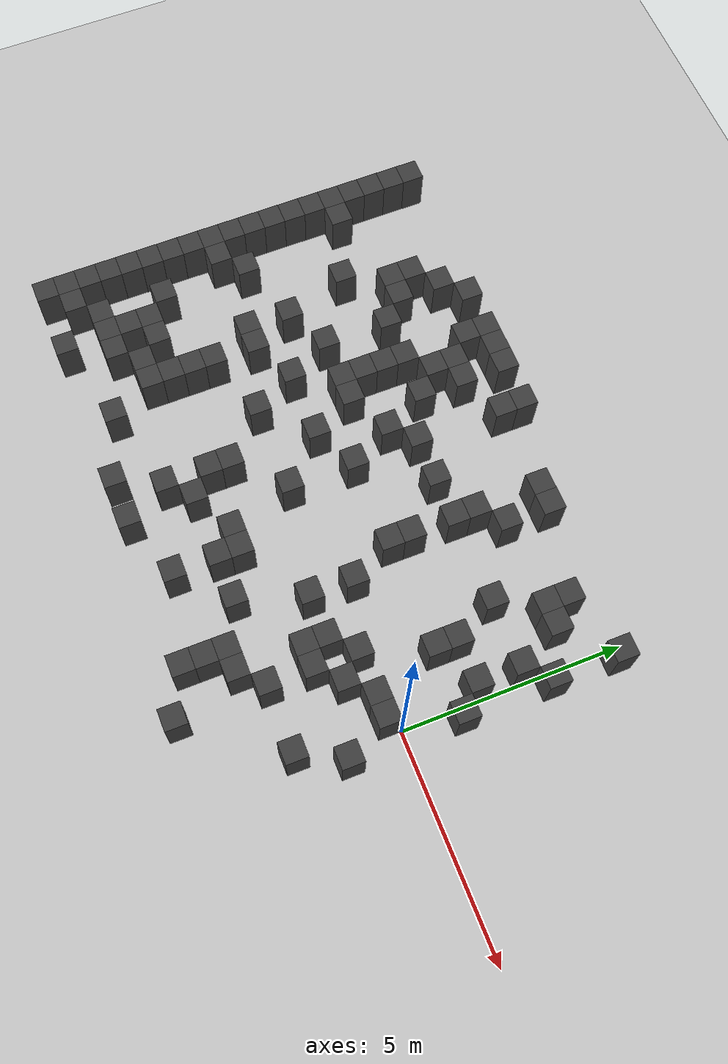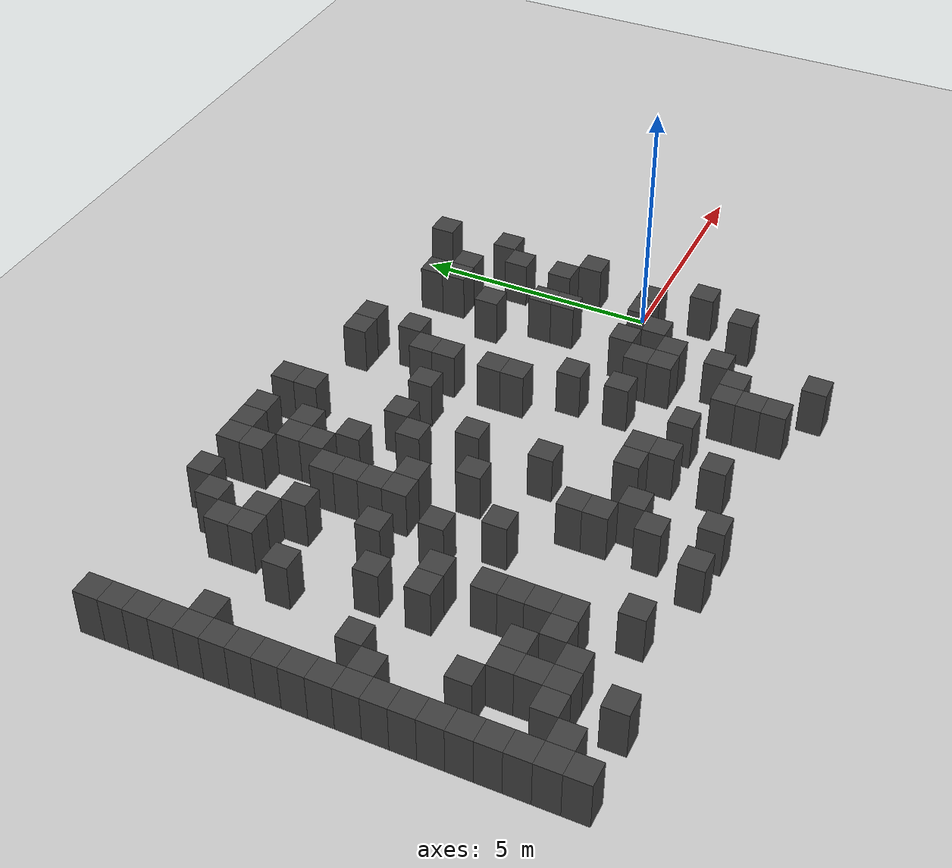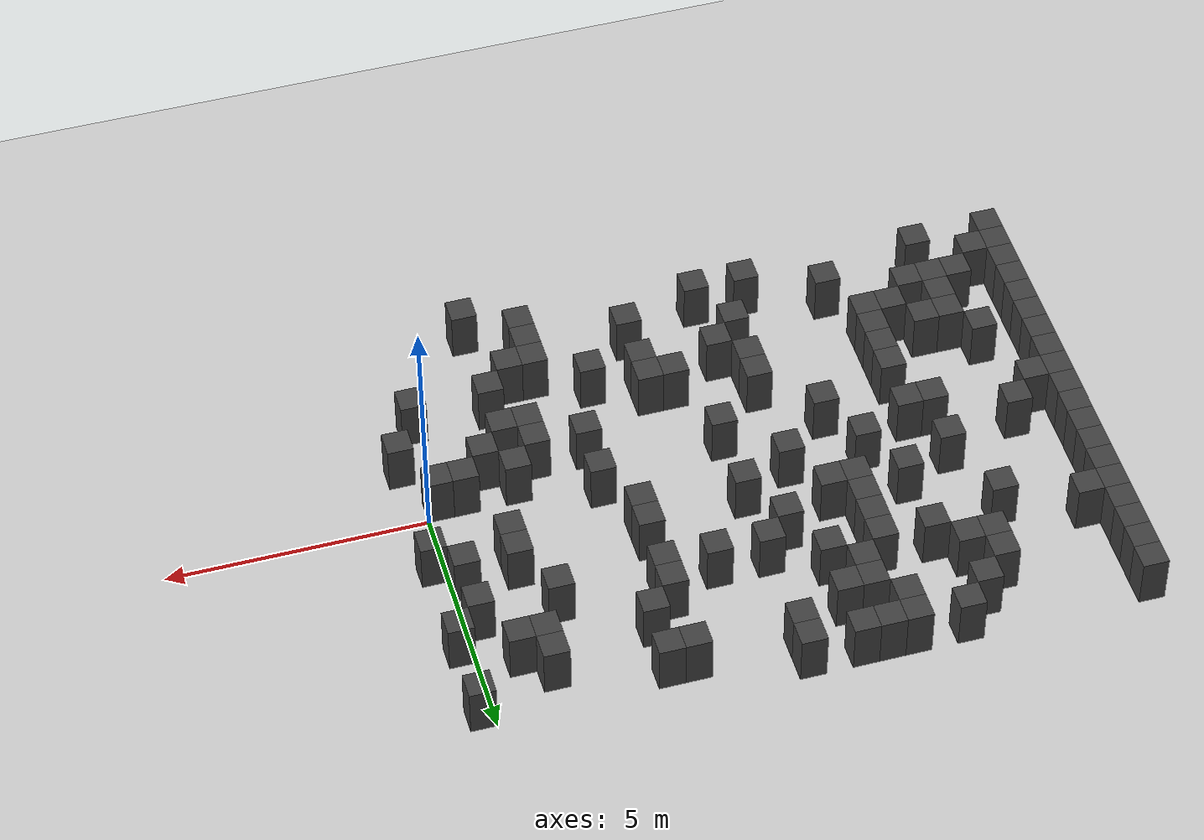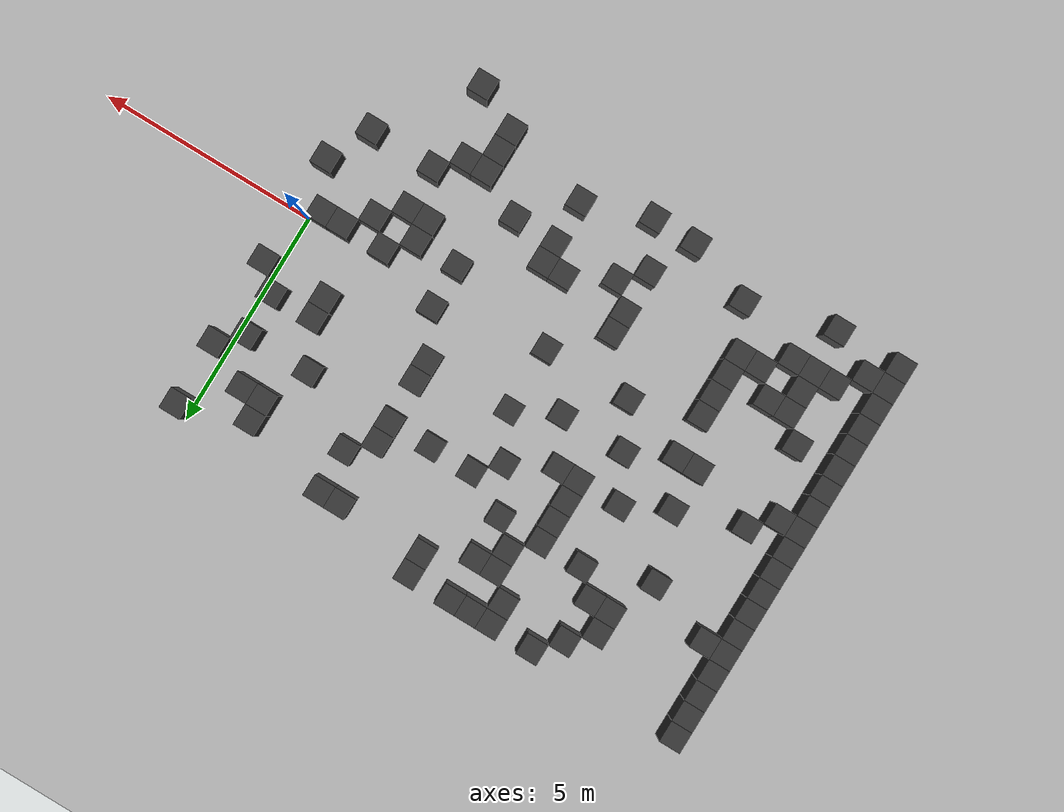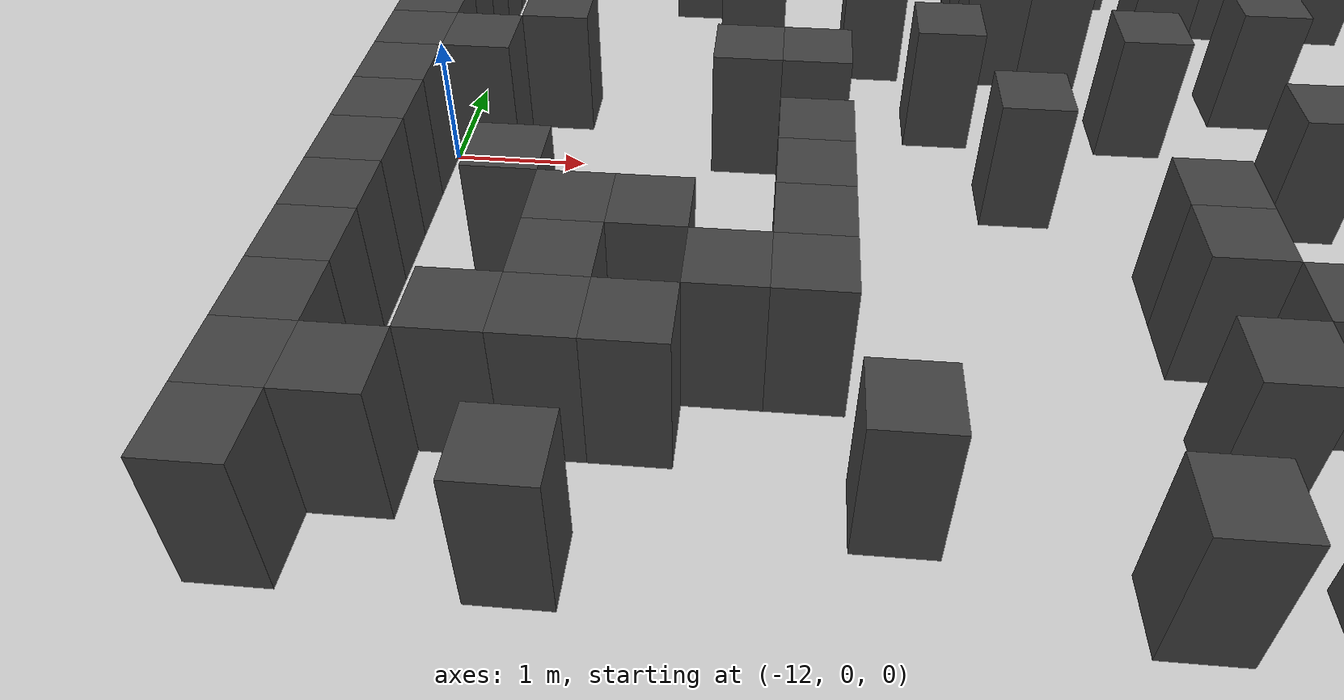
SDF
<sdf version="1.7">
 <world name="map_4581">
  <model name="ground_plane">
   <static>true</static>
   <link name="link">
    <collision name="collision">
     <geometry><plane><normal>0 0 1</normal><size>200 200</size></plane></geometry>
    </collision>
    <visual name="visual">
     <geometry><plane><normal>0 0 1</normal><size>200 200</size></plane></geometry>
     <material><ambient>0.8 0.8 0.8 1</ambient><diffuse>0.8 0.8 0.8 1</diffuse></material>
    </visual>
   </link>
  </model>
  <model name="maze_environment">
   <static>true</static>
   <link name="wall_208">
    <pose>-12.250 5.250 0.500 0 0 0</pose>
    <collision name="col"><geometry><box><size>0.5 0.5 1.0</size></box></geometry></collision>
    <visual name="vis">
     <geometry><box><size>0.5 0.5 1.0</size></box></geometry>
     <material><ambient>0.15 0.15 0.15 1</ambient><diffuse>0.25 0.25 0.25 1</diffuse></material>
    </visual>
   </link>
   <link name="wall_209">
    <pose>-8.750 5.250 0.500 0 0 0</pose>
    <collision name="col"><geometry><box><size>0.5 0.5 1.0</size></box></geometry></collision>
    <visual name="vis">
     <geometry><box><size>0.5 0.5 1.0</size></box></geometry>
     <material><ambient>0.15 0.15 0.15 1</ambient><diffuse>0.25 0.25 0.25 1</diffuse></material>
    </visual>
   </link>
   <link name="wall_210">
    <pose>-7.750 5.250 0.500 0 0 0</pose>
    <collision name="col"><geometry><box><size>0.5 0.5 1.0</size></box></geometry></collision>
    <visual name="vis">
     <geometry><box><size>0.5 0.5 1.0</size></box></geometry>
     <material><ambient>0.15 0.15 0.15 1</ambient><diffuse>0.25 0.25 0.25 1</diffuse></material>
    </visual>
   </link>
   <link name="wall_211">
    <pose>-7.250 5.250 0.500 0 0 0</pose>
    <collision name="col"><geometry><box><size>0.5 0.5 1.0</size></box></geometry></collision>
    <visual name="vis">
     <geometry><box><size>0.5 0.5 1.0</size></box></geometry>
     <material><ambient>0.15 0.15 0.15 1</ambient><diffuse>0.25 0.25 0.25 1</diffuse></material>
    </visual>
   </link>
   <link name="wall_212">
    <pose>-6.750 5.250 0.500 0 0 0</pose>
    <collision name="col"><geometry><box><size>0.5 0.5 1.0</size></box></geometry></collision>
    <visual name="vis">
     <geometry><box><size>0.5 0.5 1.0</size></box></geometry>
     <material><ambient>0.15 0.15 0.15 1</ambient><diffuse>0.25 0.25 0.25 1</diffuse></material>
    </visual>
   </link>
   <link name="wall_213">
    <pose>-5.750 5.250 0.500 0 0 0</pose>
    <collision name="col"><geometry><box><size>0.5 0.5 1.0</size></box></geometry></collision>
    <visual name="vis">
     <geometry><box><size>0.5 0.5 1.0</size></box></geometry>
     <material><ambient>0.15 0.15 0.15 1</ambient><diffuse>0.25 0.25 0.25 1</diffuse></material>
    </visual>
   </link>
   <link name="wall_223">
    <pose>-12.250 4.750 0.500 0 0 0</pose>
    <collision name="col"><geometry><box><size>0.5 0.5 1.0</size></box></geometry></collision>
    <visual name="vis">
     <geometry><box><size>0.5 0.5 1.0</size></box></geometry>
     <material><ambient>0.15 0.15 0.15 1</ambient><diffuse>0.25 0.25 0.25 1</diffuse></material>
    </visual>
   </link>
   <link name="wall_224">
    <pose>-9.250 4.750 0.500 0 0 0</pose>
    <collision name="col"><geometry><box><size>0.5 0.5 1.0</size></box></geometry></collision>
    <visual name="vis">
     <geometry><box><size>0.5 0.5 1.0</size></box></geometry>
     <material><ambient>0.15 0.15 0.15 1</ambient><diffuse>0.25 0.25 0.25 1</diffuse></material>
    </visual>
   </link>
   <link name="wall_225">
    <pose>-7.750 4.750 0.500 0 0 0</pose>
    <collision name="col"><geometry><box><size>0.5 0.5 1.0</size></box></geometry></collision>
    <visual name="vis">
     <geometry><box><size>0.5 0.5 1.0</size></box></geometry>
     <material><ambient>0.15 0.15 0.15 1</ambient><diffuse>0.25 0.25 0.25 1</diffuse></material>
    </visual>
   </link>
   <link name="wall_226">
    <pose>-5.750 4.750 0.500 0 0 0</pose>
    <collision name="col"><geometry><box><size>0.5 0.5 1.0</size></box></geometry></collision>
    <visual name="vis">
     <geometry><box><size>0.5 0.5 1.0</size></box></geometry>
     <material><ambient>0.15 0.15 0.15 1</ambient><diffuse>0.25 0.25 0.25 1</diffuse></material>
    </visual>
   </link>
   <link name="wall_227">
    <pose>-3.750 4.750 0.500 0 0 0</pose>
    <collision name="col"><geometry><box><size>0.5 0.5 1.0</size></box></geometry></collision>
    <visual name="vis">
     <geometry><box><size>0.5 0.5 1.0</size></box></geometry>
     <material><ambient>0.15 0.15 0.15 1</ambient><diffuse>0.25 0.25 0.25 1</diffuse></material>
    </visual>
   </link>
   <link name="wall_228">
    <pose>-3.250 4.750 0.500 0 0 0</pose>
    <collision name="col"><geometry><box><size>0.5 0.5 1.0</size></box></geometry></collision>
    <visual name="vis">
     <geometry><box><size>0.5 0.5 1.0</size></box></geometry>
     <material><ambient>0.15 0.15 0.15 1</ambient><diffuse>0.25 0.25 0.25 1</diffuse></material>
    </visual>
   </link>
   <link name="wall_229">
    <pose>0.250 4.750 0.500 0 0 0</pose>
    <collision name="col"><geometry><box><size>0.5 0.5 1.0</size></box></geometry></collision>
    <visual name="vis">
     <geometry><box><size>0.5 0.5 1.0</size></box></geometry>
     <material><ambient>0.15 0.15 0.15 1</ambient><diffuse>0.25 0.25 0.25 1</diffuse></material>
    </visual>
   </link>
   <link name="wall_235">
    <pose>-12.250 4.250 0.500 0 0 0</pose>
    <collision name="col"><geometry><box><size>0.5 0.5 1.0</size></box></geometry></collision>
    <visual name="vis">
     <geometry><box><size>0.5 0.5 1.0</size></box></geometry>
     <material><ambient>0.15 0.15 0.15 1</ambient><diffuse>0.25 0.25 0.25 1</diffuse></material>
    </visual>
   </link>
   <link name="wall_236">
    <pose>-9.750 4.250 0.500 0 0 0</pose>
    <collision name="col"><geometry><box><size>0.5 0.5 1.0</size></box></geometry></collision>
    <visual name="vis">
     <geometry><box><size>0.5 0.5 1.0</size></box></geometry>
     <material><ambient>0.15 0.15 0.15 1</ambient><diffuse>0.25 0.25 0.25 1</diffuse></material>
    </visual>
   </link>
   <link name="wall_237">
    <pose>-7.250 4.250 0.500 0 0 0</pose>
    <collision name="col"><geometry><box><size>0.5 0.5 1.0</size></box></geometry></collision>
    <visual name="vis">
     <geometry><box><size>0.5 0.5 1.0</size></box></geometry>
     <material><ambient>0.15 0.15 0.15 1</ambient><diffuse>0.25 0.25 0.25 1</diffuse></material>
    </visual>
   </link>
   <link name="wall_238">
    <pose>-6.750 4.250 0.500 0 0 0</pose>
    <collision name="col"><geometry><box><size>0.5 0.5 1.0</size></box></geometry></collision>
    <visual name="vis">
     <geometry><box><size>0.5 0.5 1.0</size></box></geometry>
     <material><ambient>0.15 0.15 0.15 1</ambient><diffuse>0.25 0.25 0.25 1</diffuse></material>
    </visual>
   </link>
   <link name="wall_239">
    <pose>-1.250 4.250 0.500 0 0 0</pose>
    <collision name="col"><geometry><box><size>0.5 0.5 1.0</size></box></geometry></collision>
    <visual name="vis">
     <geometry><box><size>0.5 0.5 1.0</size></box></geometry>
     <material><ambient>0.15 0.15 0.15 1</ambient><diffuse>0.25 0.25 0.25 1</diffuse></material>
    </visual>
   </link>
   <link name="wall_244">
    <pose>-12.250 3.750 0.500 0 0 0</pose>
    <collision name="col"><geometry><box><size>0.5 0.5 1.0</size></box></geometry></collision>
    <visual name="vis">
     <geometry><box><size>0.5 0.5 1.0</size></box></geometry>
     <material><ambient>0.15 0.15 0.15 1</ambient><diffuse>0.25 0.25 0.25 1</diffuse></material>
    </visual>
   </link>
   <link name="wall_245">
    <pose>-9.750 3.750 0.500 0 0 0</pose>
    <collision name="col"><geometry><box><size>0.5 0.5 1.0</size></box></geometry></collision>
    <visual name="vis">
     <geometry><box><size>0.5 0.5 1.0</size></box></geometry>
     <material><ambient>0.15 0.15 0.15 1</ambient><diffuse>0.25 0.25 0.25 1</diffuse></material>
    </visual>
   </link>
   <link name="wall_246">
    <pose>-9.250 3.750 0.500 0 0 0</pose>
    <collision name="col"><geometry><box><size>0.5 0.5 1.0</size></box></geometry></collision>
    <visual name="vis">
     <geometry><box><size>0.5 0.5 1.0</size></box></geometry>
     <material><ambient>0.15 0.15 0.15 1</ambient><diffuse>0.25 0.25 0.25 1</diffuse></material>
    </visual>
   </link>
   <link name="wall_247">
    <pose>-7.250 3.750 0.500 0 0 0</pose>
    <collision name="col"><geometry><box><size>0.5 0.5 1.0</size></box></geometry></collision>
    <visual name="vis">
     <geometry><box><size>0.5 0.5 1.0</size></box></geometry>
     <material><ambient>0.15 0.15 0.15 1</ambient><diffuse>0.25 0.25 0.25 1</diffuse></material>
    </visual>
   </link>
   <link name="wall_248">
    <pose>-3.250 3.750 0.500 0 0 0</pose>
    <collision name="col"><geometry><box><size>0.5 0.5 1.0</size></box></geometry></collision>
    <visual name="vis">
     <geometry><box><size>0.5 0.5 1.0</size></box></geometry>
     <material><ambient>0.15 0.15 0.15 1</ambient><diffuse>0.25 0.25 0.25 1</diffuse></material>
    </visual>
   </link>
   <link name="wall_249">
    <pose>-1.250 3.750 0.500 0 0 0</pose>
    <collision name="col"><geometry><box><size>0.5 0.5 1.0</size></box></geometry></collision>
    <visual name="vis">
     <geometry><box><size>0.5 0.5 1.0</size></box></geometry>
     <material><ambient>0.15 0.15 0.15 1</ambient><diffuse>0.25 0.25 0.25 1</diffuse></material>
    </visual>
   </link>
   <link name="wall_250">
    <pose>-0.750 3.750 0.500 0 0 0</pose>
    <collision name="col"><geometry><box><size>0.5 0.5 1.0</size></box></geometry></collision>
    <visual name="vis">
     <geometry><box><size>0.5 0.5 1.0</size></box></geometry>
     <material><ambient>0.15 0.15 0.15 1</ambient><diffuse>0.25 0.25 0.25 1</diffuse></material>
    </visual>
   </link>
   <link name="wall_254">
    <pose>-12.250 3.250 0.500 0 0 0</pose>
    <collision name="col"><geometry><box><size>0.5 0.5 1.0</size></box></geometry></collision>
    <visual name="vis">
     <geometry><box><size>0.5 0.5 1.0</size></box></geometry>
     <material><ambient>0.15 0.15 0.15 1</ambient><diffuse>0.25 0.25 0.25 1</diffuse></material>
    </visual>
   </link>
   <link name="wall_255">
    <pose>-11.750 3.250 0.500 0 0 0</pose>
    <collision name="col"><geometry><box><size>0.5 0.5 1.0</size></box></geometry></collision>
    <visual name="vis">
     <geometry><box><size>0.5 0.5 1.0</size></box></geometry>
     <material><ambient>0.15 0.15 0.15 1</ambient><diffuse>0.25 0.25 0.25 1</diffuse></material>
    </visual>
   </link>
   <link name="wall_256">
    <pose>-8.750 3.250 0.500 0 0 0</pose>
    <collision name="col"><geometry><box><size>0.5 0.5 1.0</size></box></geometry></collision>
    <visual name="vis">
     <geometry><box><size>0.5 0.5 1.0</size></box></geometry>
     <material><ambient>0.15 0.15 0.15 1</ambient><diffuse>0.25 0.25 0.25 1</diffuse></material>
    </visual>
   </link>
   <link name="wall_257">
    <pose>-7.750 3.250 0.500 0 0 0</pose>
    <collision name="col"><geometry><box><size>0.5 0.5 1.0</size></box></geometry></collision>
    <visual name="vis">
     <geometry><box><size>0.5 0.5 1.0</size></box></geometry>
     <material><ambient>0.15 0.15 0.15 1</ambient><diffuse>0.25 0.25 0.25 1</diffuse></material>
    </visual>
   </link>
   <link name="wall_258">
    <pose>-6.750 3.250 0.500 0 0 0</pose>
    <collision name="col"><geometry><box><size>0.5 0.5 1.0</size></box></geometry></collision>
    <visual name="vis">
     <geometry><box><size>0.5 0.5 1.0</size></box></geometry>
     <material><ambient>0.15 0.15 0.15 1</ambient><diffuse>0.25 0.25 0.25 1</diffuse></material>
    </visual>
   </link>
   <link name="wall_259">
    <pose>-3.750 3.250 0.500 0 0 0</pose>
    <collision name="col"><geometry><box><size>0.5 0.5 1.0</size></box></geometry></collision>
    <visual name="vis">
     <geometry><box><size>0.5 0.5 1.0</size></box></geometry>
     <material><ambient>0.15 0.15 0.15 1</ambient><diffuse>0.25 0.25 0.25 1</diffuse></material>
    </visual>
   </link>
   <link name="wall_260">
    <pose>0.250 3.250 0.500 0 0 0</pose>
    <collision name="col"><geometry><box><size>0.5 0.5 1.0</size></box></geometry></collision>
    <visual name="vis">
     <geometry><box><size>0.5 0.5 1.0</size></box></geometry>
     <material><ambient>0.15 0.15 0.15 1</ambient><diffuse>0.25 0.25 0.25 1</diffuse></material>
    </visual>
   </link>
   <link name="wall_270">
    <pose>-12.250 2.750 0.500 0 0 0</pose>
    <collision name="col"><geometry><box><size>0.5 0.5 1.0</size></box></geometry></collision>
    <visual name="vis">
     <geometry><box><size>0.5 0.5 1.0</size></box></geometry>
     <material><ambient>0.15 0.15 0.15 1</ambient><diffuse>0.25 0.25 0.25 1</diffuse></material>
    </visual>
   </link>
   <link name="wall_271">
    <pose>-10.250 2.750 0.500 0 0 0</pose>
    <collision name="col"><geometry><box><size>0.5 0.5 1.0</size></box></geometry></collision>
    <visual name="vis">
     <geometry><box><size>0.5 0.5 1.0</size></box></geometry>
     <material><ambient>0.15 0.15 0.15 1</ambient><diffuse>0.25 0.25 0.25 1</diffuse></material>
    </visual>
   </link>
   <link name="wall_272">
    <pose>-7.750 2.750 0.500 0 0 0</pose>
    <collision name="col"><geometry><box><size>0.5 0.5 1.0</size></box></geometry></collision>
    <visual name="vis">
     <geometry><box><size>0.5 0.5 1.0</size></box></geometry>
     <material><ambient>0.15 0.15 0.15 1</ambient><diffuse>0.25 0.25 0.25 1</diffuse></material>
    </visual>
   </link>
   <link name="wall_273">
    <pose>-5.750 2.750 0.500 0 0 0</pose>
    <collision name="col"><geometry><box><size>0.5 0.5 1.0</size></box></geometry></collision>
    <visual name="vis">
     <geometry><box><size>0.5 0.5 1.0</size></box></geometry>
     <material><ambient>0.15 0.15 0.15 1</ambient><diffuse>0.25 0.25 0.25 1</diffuse></material>
    </visual>
   </link>
   <link name="wall_274">
    <pose>-4.750 2.750 0.500 0 0 0</pose>
    <collision name="col"><geometry><box><size>0.5 0.5 1.0</size></box></geometry></collision>
    <visual name="vis">
     <geometry><box><size>0.5 0.5 1.0</size></box></geometry>
     <material><ambient>0.15 0.15 0.15 1</ambient><diffuse>0.25 0.25 0.25 1</diffuse></material>
    </visual>
   </link>
   <link name="wall_275">
    <pose>-3.750 2.750 0.500 0 0 0</pose>
    <collision name="col"><geometry><box><size>0.5 0.5 1.0</size></box></geometry></collision>
    <visual name="vis">
     <geometry><box><size>0.5 0.5 1.0</size></box></geometry>
     <material><ambient>0.15 0.15 0.15 1</ambient><diffuse>0.25 0.25 0.25 1</diffuse></material>
    </visual>
   </link>
   <link name="wall_276">
    <pose>-1.750 2.750 0.500 0 0 0</pose>
    <collision name="col"><geometry><box><size>0.5 0.5 1.0</size></box></geometry></collision>
    <visual name="vis">
     <geometry><box><size>0.5 0.5 1.0</size></box></geometry>
     <material><ambient>0.15 0.15 0.15 1</ambient><diffuse>0.25 0.25 0.25 1</diffuse></material>
    </visual>
   </link>
   <link name="wall_277">
    <pose>-0.250 2.750 0.500 0 0 0</pose>
    <collision name="col"><geometry><box><size>0.5 0.5 1.0</size></box></geometry></collision>
    <visual name="vis">
     <geometry><box><size>0.5 0.5 1.0</size></box></geometry>
     <material><ambient>0.15 0.15 0.15 1</ambient><diffuse>0.25 0.25 0.25 1</diffuse></material>
    </visual>
   </link>
   <link name="wall_285">
    <pose>-12.250 2.250 0.500 0 0 0</pose>
    <collision name="col"><geometry><box><size>0.5 0.5 1.0</size></box></geometry></collision>
    <visual name="vis">
     <geometry><box><size>0.5 0.5 1.0</size></box></geometry>
     <material><ambient>0.15 0.15 0.15 1</ambient><diffuse>0.25 0.25 0.25 1</diffuse></material>
    </visual>
   </link>
   <link name="wall_286">
    <pose>-7.750 2.250 0.500 0 0 0</pose>
    <collision name="col"><geometry><box><size>0.5 0.5 1.0</size></box></geometry></collision>
    <visual name="vis">
     <geometry><box><size>0.5 0.5 1.0</size></box></geometry>
     <material><ambient>0.15 0.15 0.15 1</ambient><diffuse>0.25 0.25 0.25 1</diffuse></material>
    </visual>
   </link>
   <link name="wall_287">
    <pose>-6.250 2.250 0.500 0 0 0</pose>
    <collision name="col"><geometry><box><size>0.5 0.5 1.0</size></box></geometry></collision>
    <visual name="vis">
     <geometry><box><size>0.5 0.5 1.0</size></box></geometry>
     <material><ambient>0.15 0.15 0.15 1</ambient><diffuse>0.25 0.25 0.25 1</diffuse></material>
    </visual>
   </link>
   <link name="wall_298">
    <pose>-12.250 1.750 0.500 0 0 0</pose>
    <collision name="col"><geometry><box><size>0.5 0.5 1.0</size></box></geometry></collision>
    <visual name="vis">
     <geometry><box><size>0.5 0.5 1.0</size></box></geometry>
     <material><ambient>0.15 0.15 0.15 1</ambient><diffuse>0.25 0.25 0.25 1</diffuse></material>
    </visual>
   </link>
   <link name="wall_299">
    <pose>-8.750 1.750 0.500 0 0 0</pose>
    <collision name="col"><geometry><box><size>0.5 0.5 1.0</size></box></geometry></collision>
    <visual name="vis">
     <geometry><box><size>0.5 0.5 1.0</size></box></geometry>
     <material><ambient>0.15 0.15 0.15 1</ambient><diffuse>0.25 0.25 0.25 1</diffuse></material>
    </visual>
   </link>
   <link name="wall_300">
    <pose>-7.750 1.750 0.500 0 0 0</pose>
    <collision name="col"><geometry><box><size>0.5 0.5 1.0</size></box></geometry></collision>
    <visual name="vis">
     <geometry><box><size>0.5 0.5 1.0</size></box></geometry>
     <material><ambient>0.15 0.15 0.15 1</ambient><diffuse>0.25 0.25 0.25 1</diffuse></material>
    </visual>
   </link>
   <link name="wall_301">
    <pose>-7.250 1.750 0.500 0 0 0</pose>
    <collision name="col"><geometry><box><size>0.5 0.5 1.0</size></box></geometry></collision>
    <visual name="vis">
     <geometry><box><size>0.5 0.5 1.0</size></box></geometry>
     <material><ambient>0.15 0.15 0.15 1</ambient><diffuse>0.25 0.25 0.25 1</diffuse></material>
    </visual>
   </link>
   <link name="wall_302">
    <pose>-3.750 1.750 0.500 0 0 0</pose>
    <collision name="col"><geometry><box><size>0.5 0.5 1.0</size></box></geometry></collision>
    <visual name="vis">
     <geometry><box><size>0.5 0.5 1.0</size></box></geometry>
     <material><ambient>0.15 0.15 0.15 1</ambient><diffuse>0.25 0.25 0.25 1</diffuse></material>
    </visual>
   </link>
   <link name="wall_303">
    <pose>-1.250 1.750 0.500 0 0 0</pose>
    <collision name="col"><geometry><box><size>0.5 0.5 1.0</size></box></geometry></collision>
    <visual name="vis">
     <geometry><box><size>0.5 0.5 1.0</size></box></geometry>
     <material><ambient>0.15 0.15 0.15 1</ambient><diffuse>0.25 0.25 0.25 1</diffuse></material>
    </visual>
   </link>
   <link name="wall_304">
    <pose>-0.250 1.750 0.500 0 0 0</pose>
    <collision name="col"><geometry><box><size>0.5 0.5 1.0</size></box></geometry></collision>
    <visual name="vis">
     <geometry><box><size>0.5 0.5 1.0</size></box></geometry>
     <material><ambient>0.15 0.15 0.15 1</ambient><diffuse>0.25 0.25 0.25 1</diffuse></material>
    </visual>
   </link>
   <link name="wall_316">
    <pose>-12.250 1.250 0.500 0 0 0</pose>
    <collision name="col"><geometry><box><size>0.5 0.5 1.0</size></box></geometry></collision>
    <visual name="vis">
     <geometry><box><size>0.5 0.5 1.0</size></box></geometry>
     <material><ambient>0.15 0.15 0.15 1</ambient><diffuse>0.25 0.25 0.25 1</diffuse></material>
    </visual>
   </link>
   <link name="wall_317">
    <pose>-9.750 1.250 0.500 0 0 0</pose>
    <collision name="col"><geometry><box><size>0.5 0.5 1.0</size></box></geometry></collision>
    <visual name="vis">
     <geometry><box><size>0.5 0.5 1.0</size></box></geometry>
     <material><ambient>0.15 0.15 0.15 1</ambient><diffuse>0.25 0.25 0.25 1</diffuse></material>
    </visual>
   </link>
   <link name="wall_318">
    <pose>-5.750 1.250 0.500 0 0 0</pose>
    <collision name="col"><geometry><box><size>0.5 0.5 1.0</size></box></geometry></collision>
    <visual name="vis">
     <geometry><box><size>0.5 0.5 1.0</size></box></geometry>
     <material><ambient>0.15 0.15 0.15 1</ambient><diffuse>0.25 0.25 0.25 1</diffuse></material>
    </visual>
   </link>
   <link name="wall_319">
    <pose>-3.750 1.250 0.500 0 0 0</pose>
    <collision name="col"><geometry><box><size>0.5 0.5 1.0</size></box></geometry></collision>
    <visual name="vis">
     <geometry><box><size>0.5 0.5 1.0</size></box></geometry>
     <material><ambient>0.15 0.15 0.15 1</ambient><diffuse>0.25 0.25 0.25 1</diffuse></material>
    </visual>
   </link>
   <link name="wall_320">
    <pose>-1.250 1.250 0.500 0 0 0</pose>
    <collision name="col"><geometry><box><size>0.5 0.5 1.0</size></box></geometry></collision>
    <visual name="vis">
     <geometry><box><size>0.5 0.5 1.0</size></box></geometry>
     <material><ambient>0.15 0.15 0.15 1</ambient><diffuse>0.25 0.25 0.25 1</diffuse></material>
    </visual>
   </link>
   <link name="wall_321">
    <pose>0.250 1.250 0.500 0 0 0</pose>
    <collision name="col"><geometry><box><size>0.5 0.5 1.0</size></box></geometry></collision>
    <visual name="vis">
     <geometry><box><size>0.5 0.5 1.0</size></box></geometry>
     <material><ambient>0.15 0.15 0.15 1</ambient><diffuse>0.25 0.25 0.25 1</diffuse></material>
    </visual>
   </link>
   <link name="wall_328">
    <pose>-12.250 0.750 0.500 0 0 0</pose>
    <collision name="col"><geometry><box><size>0.5 0.5 1.0</size></box></geometry></collision>
    <visual name="vis">
     <geometry><box><size>0.5 0.5 1.0</size></box></geometry>
     <material><ambient>0.15 0.15 0.15 1</ambient><diffuse>0.25 0.25 0.25 1</diffuse></material>
    </visual>
   </link>
   <link name="wall_329">
    <pose>-11.250 0.750 0.500 0 0 0</pose>
    <collision name="col"><geometry><box><size>0.5 0.5 1.0</size></box></geometry></collision>
    <visual name="vis">
     <geometry><box><size>0.5 0.5 1.0</size></box></geometry>
     <material><ambient>0.15 0.15 0.15 1</ambient><diffuse>0.25 0.25 0.25 1</diffuse></material>
    </visual>
   </link>
   <link name="wall_330">
    <pose>-8.250 0.750 0.500 0 0 0</pose>
    <collision name="col"><geometry><box><size>0.5 0.5 1.0</size></box></geometry></collision>
    <visual name="vis">
     <geometry><box><size>0.5 0.5 1.0</size></box></geometry>
     <material><ambient>0.15 0.15 0.15 1</ambient><diffuse>0.25 0.25 0.25 1</diffuse></material>
    </visual>
   </link>
   <link name="wall_331">
    <pose>-6.750 0.750 0.500 0 0 0</pose>
    <collision name="col"><geometry><box><size>0.5 0.5 1.0</size></box></geometry></collision>
    <visual name="vis">
     <geometry><box><size>0.5 0.5 1.0</size></box></geometry>
     <material><ambient>0.15 0.15 0.15 1</ambient><diffuse>0.25 0.25 0.25 1</diffuse></material>
    </visual>
   </link>
   <link name="wall_340">
    <pose>-12.250 0.250 0.500 0 0 0</pose>
    <collision name="col"><geometry><box><size>0.5 0.5 1.0</size></box></geometry></collision>
    <visual name="vis">
     <geometry><box><size>0.5 0.5 1.0</size></box></geometry>
     <material><ambient>0.15 0.15 0.15 1</ambient><diffuse>0.25 0.25 0.25 1</diffuse></material>
    </visual>
   </link>
   <link name="wall_341">
    <pose>-11.750 0.250 0.500 0 0 0</pose>
    <collision name="col"><geometry><box><size>0.5 0.5 1.0</size></box></geometry></collision>
    <visual name="vis">
     <geometry><box><size>0.5 0.5 1.0</size></box></geometry>
     <material><ambient>0.15 0.15 0.15 1</ambient><diffuse>0.25 0.25 0.25 1</diffuse></material>
    </visual>
   </link>
   <link name="wall_342">
    <pose>-9.750 0.250 0.500 0 0 0</pose>
    <collision name="col"><geometry><box><size>0.5 0.5 1.0</size></box></geometry></collision>
    <visual name="vis">
     <geometry><box><size>0.5 0.5 1.0</size></box></geometry>
     <material><ambient>0.15 0.15 0.15 1</ambient><diffuse>0.25 0.25 0.25 1</diffuse></material>
    </visual>
   </link>
   <link name="wall_343">
    <pose>-9.250 0.250 0.500 0 0 0</pose>
    <collision name="col"><geometry><box><size>0.5 0.5 1.0</size></box></geometry></collision>
    <visual name="vis">
     <geometry><box><size>0.5 0.5 1.0</size></box></geometry>
     <material><ambient>0.15 0.15 0.15 1</ambient><diffuse>0.25 0.25 0.25 1</diffuse></material>
    </visual>
   </link>
   <link name="wall_344">
    <pose>-3.250 0.250 0.500 0 0 0</pose>
    <collision name="col"><geometry><box><size>0.5 0.5 1.0</size></box></geometry></collision>
    <visual name="vis">
     <geometry><box><size>0.5 0.5 1.0</size></box></geometry>
     <material><ambient>0.15 0.15 0.15 1</ambient><diffuse>0.25 0.25 0.25 1</diffuse></material>
    </visual>
   </link>
   <link name="wall_351">
    <pose>-12.250 -0.250 0.500 0 0 0</pose>
    <collision name="col"><geometry><box><size>0.5 0.5 1.0</size></box></geometry></collision>
    <visual name="vis">
     <geometry><box><size>0.5 0.5 1.0</size></box></geometry>
     <material><ambient>0.15 0.15 0.15 1</ambient><diffuse>0.25 0.25 0.25 1</diffuse></material>
    </visual>
   </link>
   <link name="wall_352">
    <pose>-7.750 -0.250 0.500 0 0 0</pose>
    <collision name="col"><geometry><box><size>0.5 0.5 1.0</size></box></geometry></collision>
    <visual name="vis">
     <geometry><box><size>0.5 0.5 1.0</size></box></geometry>
     <material><ambient>0.15 0.15 0.15 1</ambient><diffuse>0.25 0.25 0.25 1</diffuse></material>
    </visual>
   </link>
   <link name="wall_353">
    <pose>-5.750 -0.250 0.500 0 0 0</pose>
    <collision name="col"><geometry><box><size>0.5 0.5 1.0</size></box></geometry></collision>
    <visual name="vis">
     <geometry><box><size>0.5 0.5 1.0</size></box></geometry>
     <material><ambient>0.15 0.15 0.15 1</ambient><diffuse>0.25 0.25 0.25 1</diffuse></material>
    </visual>
   </link>
   <link name="wall_354">
    <pose>-1.750 -0.250 0.500 0 0 0</pose>
    <collision name="col"><geometry><box><size>0.5 0.5 1.0</size></box></geometry></collision>
    <visual name="vis">
     <geometry><box><size>0.5 0.5 1.0</size></box></geometry>
     <material><ambient>0.15 0.15 0.15 1</ambient><diffuse>0.25 0.25 0.25 1</diffuse></material>
    </visual>
   </link>
   <link name="wall_355">
    <pose>-0.750 -0.250 0.500 0 0 0</pose>
    <collision name="col"><geometry><box><size>0.5 0.5 1.0</size></box></geometry></collision>
    <visual name="vis">
     <geometry><box><size>0.5 0.5 1.0</size></box></geometry>
     <material><ambient>0.15 0.15 0.15 1</ambient><diffuse>0.25 0.25 0.25 1</diffuse></material>
    </visual>
   </link>
   <link name="wall_356">
    <pose>-0.250 -0.250 0.500 0 0 0</pose>
    <collision name="col"><geometry><box><size>0.5 0.5 1.0</size></box></geometry></collision>
    <visual name="vis">
     <geometry><box><size>0.5 0.5 1.0</size></box></geometry>
     <material><ambient>0.15 0.15 0.15 1</ambient><diffuse>0.25 0.25 0.25 1</diffuse></material>
    </visual>
   </link>
   <link name="wall_361">
    <pose>-12.250 -0.750 0.500 0 0 0</pose>
    <collision name="col"><geometry><box><size>0.5 0.5 1.0</size></box></geometry></collision>
    <visual name="vis">
     <geometry><box><size>0.5 0.5 1.0</size></box></geometry>
     <material><ambient>0.15 0.15 0.15 1</ambient><diffuse>0.25 0.25 0.25 1</diffuse></material>
    </visual>
   </link>
   <link name="wall_362">
    <pose>-9.250 -0.750 0.500 0 0 0</pose>
    <collision name="col"><geometry><box><size>0.5 0.5 1.0</size></box></geometry></collision>
    <visual name="vis">
     <geometry><box><size>0.5 0.5 1.0</size></box></geometry>
     <material><ambient>0.15 0.15 0.15 1</ambient><diffuse>0.25 0.25 0.25 1</diffuse></material>
    </visual>
   </link>
   <link name="wall_363">
    <pose>-3.250 -0.750 0.500 0 0 0</pose>
    <collision name="col"><geometry><box><size>0.5 0.5 1.0</size></box></geometry></collision>
    <visual name="vis">
     <geometry><box><size>0.5 0.5 1.0</size></box></geometry>
     <material><ambient>0.15 0.15 0.15 1</ambient><diffuse>0.25 0.25 0.25 1</diffuse></material>
    </visual>
   </link>
   <link name="wall_364">
    <pose>-2.250 -0.750 0.500 0 0 0</pose>
    <collision name="col"><geometry><box><size>0.5 0.5 1.0</size></box></geometry></collision>
    <visual name="vis">
     <geometry><box><size>0.5 0.5 1.0</size></box></geometry>
     <material><ambient>0.15 0.15 0.15 1</ambient><diffuse>0.25 0.25 0.25 1</diffuse></material>
    </visual>
   </link>
   <link name="wall_365">
    <pose>-1.250 -0.750 0.500 0 0 0</pose>
    <collision name="col"><geometry><box><size>0.5 0.5 1.0</size></box></geometry></collision>
    <visual name="vis">
     <geometry><box><size>0.5 0.5 1.0</size></box></geometry>
     <material><ambient>0.15 0.15 0.15 1</ambient><diffuse>0.25 0.25 0.25 1</diffuse></material>
    </visual>
   </link>
   <link name="wall_370">
    <pose>-12.250 -1.250 0.500 0 0 0</pose>
    <collision name="col"><geometry><box><size>0.5 0.5 1.0</size></box></geometry></collision>
    <visual name="vis">
     <geometry><box><size>0.5 0.5 1.0</size></box></geometry>
     <material><ambient>0.15 0.15 0.15 1</ambient><diffuse>0.25 0.25 0.25 1</diffuse></material>
    </visual>
   </link>
   <link name="wall_371">
    <pose>-11.250 -1.250 0.500 0 0 0</pose>
    <collision name="col"><geometry><box><size>0.5 0.5 1.0</size></box></geometry></collision>
    <visual name="vis">
     <geometry><box><size>0.5 0.5 1.0</size></box></geometry>
     <material><ambient>0.15 0.15 0.15 1</ambient><diffuse>0.25 0.25 0.25 1</diffuse></material>
    </visual>
   </link>
   <link name="wall_372">
    <pose>-9.250 -1.250 0.500 0 0 0</pose>
    <collision name="col"><geometry><box><size>0.5 0.5 1.0</size></box></geometry></collision>
    <visual name="vis">
     <geometry><box><size>0.5 0.5 1.0</size></box></geometry>
     <material><ambient>0.15 0.15 0.15 1</ambient><diffuse>0.25 0.25 0.25 1</diffuse></material>
    </visual>
   </link>
   <link name="wall_373">
    <pose>-6.750 -1.250 0.500 0 0 0</pose>
    <collision name="col"><geometry><box><size>0.5 0.5 1.0</size></box></geometry></collision>
    <visual name="vis">
     <geometry><box><size>0.5 0.5 1.0</size></box></geometry>
     <material><ambient>0.15 0.15 0.15 1</ambient><diffuse>0.25 0.25 0.25 1</diffuse></material>
    </visual>
   </link>
   <link name="wall_374">
    <pose>-2.250 -1.250 0.500 0 0 0</pose>
    <collision name="col"><geometry><box><size>0.5 0.5 1.0</size></box></geometry></collision>
    <visual name="vis">
     <geometry><box><size>0.5 0.5 1.0</size></box></geometry>
     <material><ambient>0.15 0.15 0.15 1</ambient><diffuse>0.25 0.25 0.25 1</diffuse></material>
    </visual>
   </link>
   <link name="wall_375">
    <pose>-1.750 -1.250 0.500 0 0 0</pose>
    <collision name="col"><geometry><box><size>0.5 0.5 1.0</size></box></geometry></collision>
    <visual name="vis">
     <geometry><box><size>0.5 0.5 1.0</size></box></geometry>
     <material><ambient>0.15 0.15 0.15 1</ambient><diffuse>0.25 0.25 0.25 1</diffuse></material>
    </visual>
   </link>
   <link name="wall_376">
    <pose>0.250 -1.250 0.500 0 0 0</pose>
    <collision name="col"><geometry><box><size>0.5 0.5 1.0</size></box></geometry></collision>
    <visual name="vis">
     <geometry><box><size>0.5 0.5 1.0</size></box></geometry>
     <material><ambient>0.15 0.15 0.15 1</ambient><diffuse>0.25 0.25 0.25 1</diffuse></material>
    </visual>
   </link>
   <link name="wall_382">
    <pose>-12.250 -1.750 0.500 0 0 0</pose>
    <collision name="col"><geometry><box><size>0.5 0.5 1.0</size></box></geometry></collision>
    <visual name="vis">
     <geometry><box><size>0.5 0.5 1.0</size></box></geometry>
     <material><ambient>0.15 0.15 0.15 1</ambient><diffuse>0.25 0.25 0.25 1</diffuse></material>
    </visual>
   </link>
   <link name="wall_383">
    <pose>-10.750 -1.750 0.500 0 0 0</pose>
    <collision name="col"><geometry><box><size>0.5 0.5 1.0</size></box></geometry></collision>
    <visual name="vis">
     <geometry><box><size>0.5 0.5 1.0</size></box></geometry>
     <material><ambient>0.15 0.15 0.15 1</ambient><diffuse>0.25 0.25 0.25 1</diffuse></material>
    </visual>
   </link>
   <link name="wall_384">
    <pose>-10.250 -1.750 0.500 0 0 0</pose>
    <collision name="col"><geometry><box><size>0.5 0.5 1.0</size></box></geometry></collision>
    <visual name="vis">
     <geometry><box><size>0.5 0.5 1.0</size></box></geometry>
     <material><ambient>0.15 0.15 0.15 1</ambient><diffuse>0.25 0.25 0.25 1</diffuse></material>
    </visual>
   </link>
   <link name="wall_385">
    <pose>-9.250 -1.750 0.500 0 0 0</pose>
    <collision name="col"><geometry><box><size>0.5 0.5 1.0</size></box></geometry></collision>
    <visual name="vis">
     <geometry><box><size>0.5 0.5 1.0</size></box></geometry>
     <material><ambient>0.15 0.15 0.15 1</ambient><diffuse>0.25 0.25 0.25 1</diffuse></material>
    </visual>
   </link>
   <link name="wall_386">
    <pose>-6.750 -1.750 0.500 0 0 0</pose>
    <collision name="col"><geometry><box><size>0.5 0.5 1.0</size></box></geometry></collision>
    <visual name="vis">
     <geometry><box><size>0.5 0.5 1.0</size></box></geometry>
     <material><ambient>0.15 0.15 0.15 1</ambient><diffuse>0.25 0.25 0.25 1</diffuse></material>
    </visual>
   </link>
   <link name="wall_387">
    <pose>-5.250 -1.750 0.500 0 0 0</pose>
    <collision name="col"><geometry><box><size>0.5 0.5 1.0</size></box></geometry></collision>
    <visual name="vis">
     <geometry><box><size>0.5 0.5 1.0</size></box></geometry>
     <material><ambient>0.15 0.15 0.15 1</ambient><diffuse>0.25 0.25 0.25 1</diffuse></material>
    </visual>
   </link>
   <link name="wall_388">
    <pose>-4.750 -1.750 0.500 0 0 0</pose>
    <collision name="col"><geometry><box><size>0.5 0.5 1.0</size></box></geometry></collision>
    <visual name="vis">
     <geometry><box><size>0.5 0.5 1.0</size></box></geometry>
     <material><ambient>0.15 0.15 0.15 1</ambient><diffuse>0.25 0.25 0.25 1</diffuse></material>
    </visual>
   </link>
   <link name="wall_394">
    <pose>-12.250 -2.250 0.500 0 0 0</pose>
    <collision name="col"><geometry><box><size>0.5 0.5 1.0</size></box></geometry></collision>
    <visual name="vis">
     <geometry><box><size>0.5 0.5 1.0</size></box></geometry>
     <material><ambient>0.15 0.15 0.15 1</ambient><diffuse>0.25 0.25 0.25 1</diffuse></material>
    </visual>
   </link>
   <link name="wall_395">
    <pose>-10.750 -2.250 0.500 0 0 0</pose>
    <collision name="col"><geometry><box><size>0.5 0.5 1.0</size></box></geometry></collision>
    <visual name="vis">
     <geometry><box><size>0.5 0.5 1.0</size></box></geometry>
     <material><ambient>0.15 0.15 0.15 1</ambient><diffuse>0.25 0.25 0.25 1</diffuse></material>
    </visual>
   </link>
   <link name="wall_396">
    <pose>-9.750 -2.250 0.500 0 0 0</pose>
    <collision name="col"><geometry><box><size>0.5 0.5 1.0</size></box></geometry></collision>
    <visual name="vis">
     <geometry><box><size>0.5 0.5 1.0</size></box></geometry>
     <material><ambient>0.15 0.15 0.15 1</ambient><diffuse>0.25 0.25 0.25 1</diffuse></material>
    </visual>
   </link>
   <link name="wall_397">
    <pose>-9.250 -2.250 0.500 0 0 0</pose>
    <collision name="col"><geometry><box><size>0.5 0.5 1.0</size></box></geometry></collision>
    <visual name="vis">
     <geometry><box><size>0.5 0.5 1.0</size></box></geometry>
     <material><ambient>0.15 0.15 0.15 1</ambient><diffuse>0.25 0.25 0.25 1</diffuse></material>
    </visual>
   </link>
   <link name="wall_398">
    <pose>-6.250 -2.250 0.500 0 0 0</pose>
    <collision name="col"><geometry><box><size>0.5 0.5 1.0</size></box></geometry></collision>
    <visual name="vis">
     <geometry><box><size>0.5 0.5 1.0</size></box></geometry>
     <material><ambient>0.15 0.15 0.15 1</ambient><diffuse>0.25 0.25 0.25 1</diffuse></material>
    </visual>
   </link>
   <link name="wall_399">
    <pose>-4.750 -2.250 0.500 0 0 0</pose>
    <collision name="col"><geometry><box><size>0.5 0.5 1.0</size></box></geometry></collision>
    <visual name="vis">
     <geometry><box><size>0.5 0.5 1.0</size></box></geometry>
     <material><ambient>0.15 0.15 0.15 1</ambient><diffuse>0.25 0.25 0.25 1</diffuse></material>
    </visual>
   </link>
   <link name="wall_400">
    <pose>-3.750 -2.250 0.500 0 0 0</pose>
    <collision name="col"><geometry><box><size>0.5 0.5 1.0</size></box></geometry></collision>
    <visual name="vis">
     <geometry><box><size>0.5 0.5 1.0</size></box></geometry>
     <material><ambient>0.15 0.15 0.15 1</ambient><diffuse>0.25 0.25 0.25 1</diffuse></material>
    </visual>
   </link>
   <link name="wall_401">
    <pose>-1.750 -2.250 0.500 0 0 0</pose>
    <collision name="col"><geometry><box><size>0.5 0.5 1.0</size></box></geometry></collision>
    <visual name="vis">
     <geometry><box><size>0.5 0.5 1.0</size></box></geometry>
     <material><ambient>0.15 0.15 0.15 1</ambient><diffuse>0.25 0.25 0.25 1</diffuse></material>
    </visual>
   </link>
   <link name="wall_402">
    <pose>-0.250 -2.250 0.500 0 0 0</pose>
    <collision name="col"><geometry><box><size>0.5 0.5 1.0</size></box></geometry></collision>
    <visual name="vis">
     <geometry><box><size>0.5 0.5 1.0</size></box></geometry>
     <material><ambient>0.15 0.15 0.15 1</ambient><diffuse>0.25 0.25 0.25 1</diffuse></material>
    </visual>
   </link>
   <link name="wall_414">
    <pose>-12.250 -2.750 0.500 0 0 0</pose>
    <collision name="col"><geometry><box><size>0.5 0.5 1.0</size></box></geometry></collision>
    <visual name="vis">
     <geometry><box><size>0.5 0.5 1.0</size></box></geometry>
     <material><ambient>0.15 0.15 0.15 1</ambient><diffuse>0.25 0.25 0.25 1</diffuse></material>
    </visual>
   </link>
   <link name="wall_415">
    <pose>-11.250 -2.750 0.500 0 0 0</pose>
    <collision name="col"><geometry><box><size>0.5 0.5 1.0</size></box></geometry></collision>
    <visual name="vis">
     <geometry><box><size>0.5 0.5 1.0</size></box></geometry>
     <material><ambient>0.15 0.15 0.15 1</ambient><diffuse>0.25 0.25 0.25 1</diffuse></material>
    </visual>
   </link>
   <link name="wall_416">
    <pose>-10.750 -2.750 0.500 0 0 0</pose>
    <collision name="col"><geometry><box><size>0.5 0.5 1.0</size></box></geometry></collision>
    <visual name="vis">
     <geometry><box><size>0.5 0.5 1.0</size></box></geometry>
     <material><ambient>0.15 0.15 0.15 1</ambient><diffuse>0.25 0.25 0.25 1</diffuse></material>
    </visual>
   </link>
   <link name="wall_417">
    <pose>-10.250 -2.750 0.500 0 0 0</pose>
    <collision name="col"><geometry><box><size>0.5 0.5 1.0</size></box></geometry></collision>
    <visual name="vis">
     <geometry><box><size>0.5 0.5 1.0</size></box></geometry>
     <material><ambient>0.15 0.15 0.15 1</ambient><diffuse>0.25 0.25 0.25 1</diffuse></material>
    </visual>
   </link>
   <link name="wall_418">
    <pose>-6.750 -2.750 0.500 0 0 0</pose>
    <collision name="col"><geometry><box><size>0.5 0.5 1.0</size></box></geometry></collision>
    <visual name="vis">
     <geometry><box><size>0.5 0.5 1.0</size></box></geometry>
     <material><ambient>0.15 0.15 0.15 1</ambient><diffuse>0.25 0.25 0.25 1</diffuse></material>
    </visual>
   </link>
   <link name="wall_419">
    <pose>-2.750 -2.750 0.500 0 0 0</pose>
    <collision name="col"><geometry><box><size>0.5 0.5 1.0</size></box></geometry></collision>
    <visual name="vis">
     <geometry><box><size>0.5 0.5 1.0</size></box></geometry>
     <material><ambient>0.15 0.15 0.15 1</ambient><diffuse>0.25 0.25 0.25 1</diffuse></material>
    </visual>
   </link>
   <link name="wall_420">
    <pose>-2.250 -2.750 0.500 0 0 0</pose>
    <collision name="col"><geometry><box><size>0.5 0.5 1.0</size></box></geometry></collision>
    <visual name="vis">
     <geometry><box><size>0.5 0.5 1.0</size></box></geometry>
     <material><ambient>0.15 0.15 0.15 1</ambient><diffuse>0.25 0.25 0.25 1</diffuse></material>
    </visual>
   </link>
   <link name="wall_427">
    <pose>-12.250 -3.250 0.500 0 0 0</pose>
    <collision name="col"><geometry><box><size>0.5 0.5 1.0</size></box></geometry></collision>
    <visual name="vis">
     <geometry><box><size>0.5 0.5 1.0</size></box></geometry>
     <material><ambient>0.15 0.15 0.15 1</ambient><diffuse>0.25 0.25 0.25 1</diffuse></material>
    </visual>
   </link>
   <link name="wall_428">
    <pose>-11.750 -3.250 0.500 0 0 0</pose>
    <collision name="col"><geometry><box><size>0.5 0.5 1.0</size></box></geometry></collision>
    <visual name="vis">
     <geometry><box><size>0.5 0.5 1.0</size></box></geometry>
     <material><ambient>0.15 0.15 0.15 1</ambient><diffuse>0.25 0.25 0.25 1</diffuse></material>
    </visual>
   </link>
   <link name="wall_429">
    <pose>-8.750 -3.250 0.500 0 0 0</pose>
    <collision name="col"><geometry><box><size>0.5 0.5 1.0</size></box></geometry></collision>
    <visual name="vis">
     <geometry><box><size>0.5 0.5 1.0</size></box></geometry>
     <material><ambient>0.15 0.15 0.15 1</ambient><diffuse>0.25 0.25 0.25 1</diffuse></material>
    </visual>
   </link>
   <link name="wall_430">
    <pose>-4.750 -3.250 0.500 0 0 0</pose>
    <collision name="col"><geometry><box><size>0.5 0.5 1.0</size></box></geometry></collision>
    <visual name="vis">
     <geometry><box><size>0.5 0.5 1.0</size></box></geometry>
     <material><ambient>0.15 0.15 0.15 1</ambient><diffuse>0.25 0.25 0.25 1</diffuse></material>
    </visual>
   </link>
   <link name="wall_431">
    <pose>-2.750 -3.250 0.500 0 0 0</pose>
    <collision name="col"><geometry><box><size>0.5 0.5 1.0</size></box></geometry></collision>
    <visual name="vis">
     <geometry><box><size>0.5 0.5 1.0</size></box></geometry>
     <material><ambient>0.15 0.15 0.15 1</ambient><diffuse>0.25 0.25 0.25 1</diffuse></material>
    </visual>
   </link>
   <link name="wall_441">
    <pose>-12.250 -3.750 0.500 0 0 0</pose>
    <collision name="col"><geometry><box><size>0.5 0.5 1.0</size></box></geometry></collision>
    <visual name="vis">
     <geometry><box><size>0.5 0.5 1.0</size></box></geometry>
     <material><ambient>0.15 0.15 0.15 1</ambient><diffuse>0.25 0.25 0.25 1</diffuse></material>
    </visual>
   </link>
   <link name="wall_442">
    <pose>-10.750 -3.750 0.500 0 0 0</pose>
    <collision name="col"><geometry><box><size>0.5 0.5 1.0</size></box></geometry></collision>
    <visual name="vis">
     <geometry><box><size>0.5 0.5 1.0</size></box></geometry>
     <material><ambient>0.15 0.15 0.15 1</ambient><diffuse>0.25 0.25 0.25 1</diffuse></material>
    </visual>
   </link>
   <link name="wall_443">
    <pose>-7.250 -3.750 0.500 0 0 0</pose>
    <collision name="col"><geometry><box><size>0.5 0.5 1.0</size></box></geometry></collision>
    <visual name="vis">
     <geometry><box><size>0.5 0.5 1.0</size></box></geometry>
     <material><ambient>0.15 0.15 0.15 1</ambient><diffuse>0.25 0.25 0.25 1</diffuse></material>
    </visual>
   </link>
   <link name="wall_444">
    <pose>-6.250 -3.750 0.500 0 0 0</pose>
    <collision name="col"><geometry><box><size>0.5 0.5 1.0</size></box></geometry></collision>
    <visual name="vis">
     <geometry><box><size>0.5 0.5 1.0</size></box></geometry>
     <material><ambient>0.15 0.15 0.15 1</ambient><diffuse>0.25 0.25 0.25 1</diffuse></material>
    </visual>
   </link>
   <link name="wall_445">
    <pose>-2.750 -3.750 0.500 0 0 0</pose>
    <collision name="col"><geometry><box><size>0.5 0.5 1.0</size></box></geometry></collision>
    <visual name="vis">
     <geometry><box><size>0.5 0.5 1.0</size></box></geometry>
     <material><ambient>0.15 0.15 0.15 1</ambient><diffuse>0.25 0.25 0.25 1</diffuse></material>
    </visual>
   </link>
   <link name="wall_460">
    <pose>-1.750 -4.250 0.500 0 0 0</pose>
    <collision name="col"><geometry><box><size>0.5 0.5 1.0</size></box></geometry></collision>
    <visual name="vis">
     <geometry><box><size>0.5 0.5 1.0</size></box></geometry>
     <material><ambient>0.15 0.15 0.15 1</ambient><diffuse>0.25 0.25 0.25 1</diffuse></material>
    </visual>
   </link>
  </model>
 </world>
</sdf>
